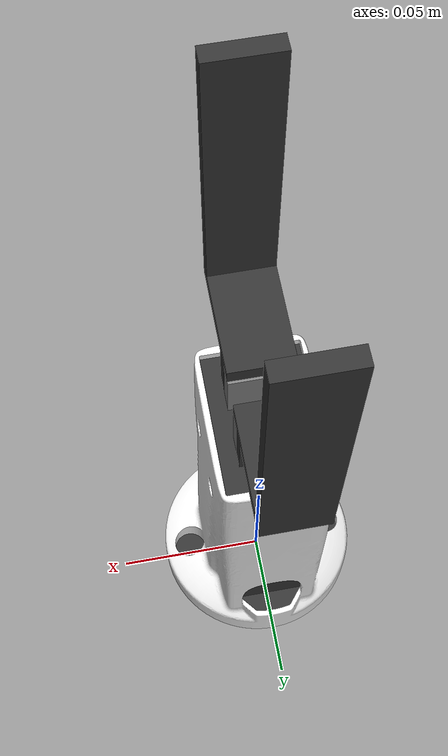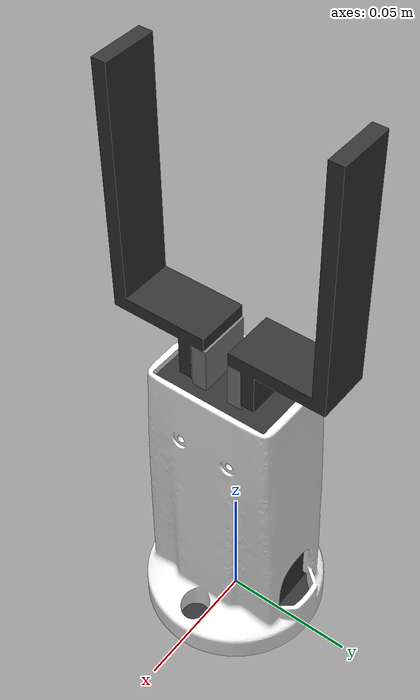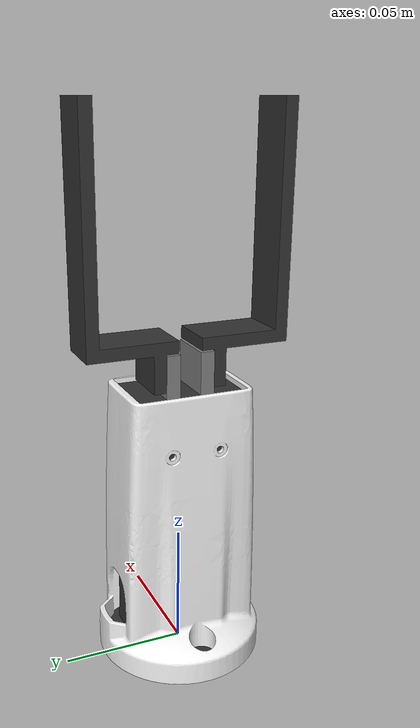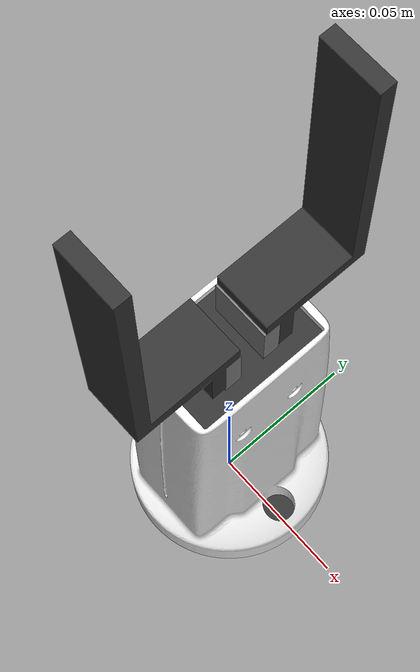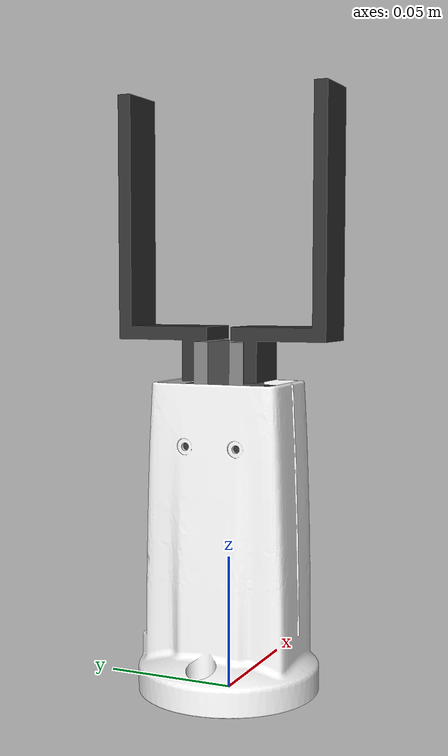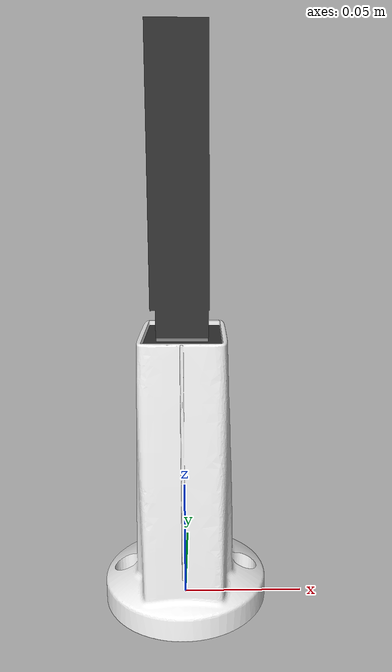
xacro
<?xml version="1.0"?>
<robot xmlns:xacro="http://ros.org/wiki/xacro" name="hitbot" >

  <!-- hotbot -->
  <xacro:include filename="$(find hitbot_description)/urdf/hitbot.urdf.xacro" />

  <gazebo>
    <plugin name="ros_control" filename="libgazebo_ros_control.so">
    </plugin>
  </gazebo>

  <!-- world link -->
  <link name="world" />
  <joint name="world_hitbot_joint" type="fixed">
    <parent link="world" />
    <child link = "hitbot_base" />
    <origin xyz="0.0 0.0 0.0" rpy="0.0 0.0 0.0" />
  </joint>

</robot>

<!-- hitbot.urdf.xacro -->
<robot xmlns:xacro="http://ros.org/wiki/xacro" name="hitbot" >

  <xacro:arg name="gazebo" default="true"/>
  <xacro:if value="$(arg gazebo)">
    <!-- Gazebo Tags -->
    <xacro:include filename="$(find random_pick)/urdf/hitbot/hitbot.gazebo.xacro"/>
  </xacro:if>

  <!-- base -->
  <link name="hitbot_base">
    <inertial>
      <mass value="0.73" />
      <origin xyz="0 0.0015244 0.0275912" rpy="0 0 0" />
      <inertia ixx="0.00278560230025" ixy="0.0" ixz="0.0" iyy="0.000400033405336" iyz="0.0" izz="0.00256378041832" />
    </inertial>
    <visual>
      <geometry>
        <mesh filename="package://random_pick/urdf/meshes/base.stl"/>
      </geometry>
      <material name="steel">
        <color rgba="0.2 0.2 0.2 1"/>
      </material>
    </visual>
    <collision>
      <geometry>
        <mesh filename="package://random_pick/urdf/meshes/base.stl"/>
      </geometry>
    </collision>
  </link>

  <!-- mask -->
  <link name="hitbot_mask">
    <inertial>
      <mass value="0.1" />
      <origin xyz="0 0.0015244 0.0275912" rpy="0 0 0" />
      <inertia ixx="0.003" ixy="0.0" ixz="0.0" iyy="0.003" iyz="0.0" izz="0.003" />
    </inertial>
    <visual>
      <geometry>
        <mesh filename="package://random_pick/urdf/meshes/mask.stl"/>
      </geometry>
      <material name="plastic">
        <color rgba="0.95 0.95 0.95 1"/>
      </material>
    </visual>
    <collision>
      <geometry>
	<mesh filename="package://random_pick/urdf/meshes/mask.stl"/>
      </geometry>
    </collision>
  </link>
  <joint name="hitbot_base_mask_joint" type="fixed">
    <origin rpy="0 0 0" xyz="0 0 0.006"/>
    <parent link="hitbot_base"/>
    <child link="hitbot_mask"/>
  </joint>

  <!-- finger 0 -->
  <link name="hitbot_finger0">
    <inertial>
      <mass value="0.1" />
      <origin xyz="0 0.0145644 0.0227941" rpy="0 0 0" />
      <inertia ixx="3.01220925051e-05" ixy="0.0" ixz="0.0" iyy="2.95873808038e-05" iyz="0.0" izz="6.95125211657e-06" />
    </inertial>
    <visual>
      <geometry>
        <mesh filename="package://random_pick/urdf/meshes/finger.stl"/>
      </geometry>
      <material name="aluminum">
        <color rgba="0.5 0.5 0.5 1"/>
      </material>
    </visual>
    <collision>
      <geometry>
        <mesh filename="package://random_pick/urdf/meshes/finger.stl"/>
      </geometry>
    </collision>
  </link>
  <joint name="hitbot_base_finger0_joint" type="prismatic">
    <origin rpy="0 0 0" xyz="0 -0.010 0.114"/>
    <parent link="hitbot_base"/>
    <child link="hitbot_finger0"/>
    <axis xyz="0 1 0"/>
    <limit upper="0" lower="-0.010" effort="30" velocity="0.01"/>
  </joint>

  <!-- finger 0 tip -->
  <link name="hitbot_finger0_tip">
    <inertial>
      <mass value="0.1" />
      <origin xyz="0 0.0145644 0.0227941" rpy="0 0 0" />
      <inertia ixx="3.01220925051e-05" ixy="0.0" ixz="0.0" iyy="2.95873808038e-05" iyz="0.0" izz="6.95125211657e-06" />
    </inertial>
    <visual>
      <geometry>
        <mesh filename="package://random_pick/urdf/meshes/finger_tip.stl"/>
      </geometry>
      <material name="steel">
        <color rgba="0.2 0.2 0.2 1"/>
      </material>
    </visual>
    <collision>
      <geometry>
        <mesh filename="package://random_pick/urdf/meshes/finger_tip.stl"/>
      </geometry>
    </collision>
  </link>
  <joint name="hitbot_finger0_tip_joint" type="fixed">
    <origin rpy="-${pi/2} 0 ${pi}" xyz="0 0 0.01"/>
    <parent link="hitbot_finger0"/>
    <child link="hitbot_finger0_tip"/>
  </joint>

  <!-- finger 1 -->
  <link name="hitbot_finger1">
    <inertial>
      <mass value="0.1" />
      <origin xyz="0 0.0145644 0.0227941" rpy="0 0 ${pi}" />
      <inertia ixx="3.01220925051e-05" ixy="0.0" ixz="0.0" iyy="2.95873808038e-05" iyz="0.0" izz="6.95125211657e-06" />
    </inertial>
    <visual>
      <geometry>
        <mesh filename="package://random_pick/urdf/meshes/finger.stl"/>
      </geometry>
      <material name="aluminum">
        <color rgba="0.5 0.5 0.5 1"/>
      </material>
    </visual>
    <collision>
      <geometry>
        <mesh filename="package://random_pick/urdf/meshes/finger.stl"/>
      </geometry>
    </collision>
  </link>
  <joint name="hitbot_base_finger1_joint" type="prismatic">
    <origin rpy="0 0 0" xyz="0 0.004 0.114"/>
    <parent link="hitbot_base"/>
    <child link="hitbot_finger1"/>
    <axis xyz="0 1 0"/>
    <limit upper="0.010" lower="0" effort="30" velocity="0.01"/>
  </joint>

  <!-- finger 0 tip -->
  <link name="hitbot_finger1_tip">
    <inertial>
      <mass value="0.1" />
      <origin xyz="0 0.0145644 0.0227941" rpy="0 0 0" />
      <inertia ixx="3.01220925051e-05" ixy="0.0" ixz="0.0" iyy="2.95873808038e-05" iyz="0.0" izz="6.95125211657e-06" />
    </inertial>
    <visual>
      <geometry>
        <mesh filename="package://random_pick/urdf/meshes/finger_tip.stl"/>
      </geometry>
      <material name="steel">
        <color rgba="0.2 0.2 0.2 1"/>
      </material>
    </visual>
    <collision>
      <geometry>
        <mesh filename="package://random_pick/urdf/meshes/finger_tip.stl"/>
      </geometry>
    </collision>
  </link>
  <joint name="hitbot_finger1_tip_joint" type="fixed">
    <origin rpy="-${pi/2} 0 0" xyz="0 0.0055 0.01"/>
    <parent link="hitbot_finger1"/>
    <child link="hitbot_finger1_tip"/>
  </joint>

</robot>
